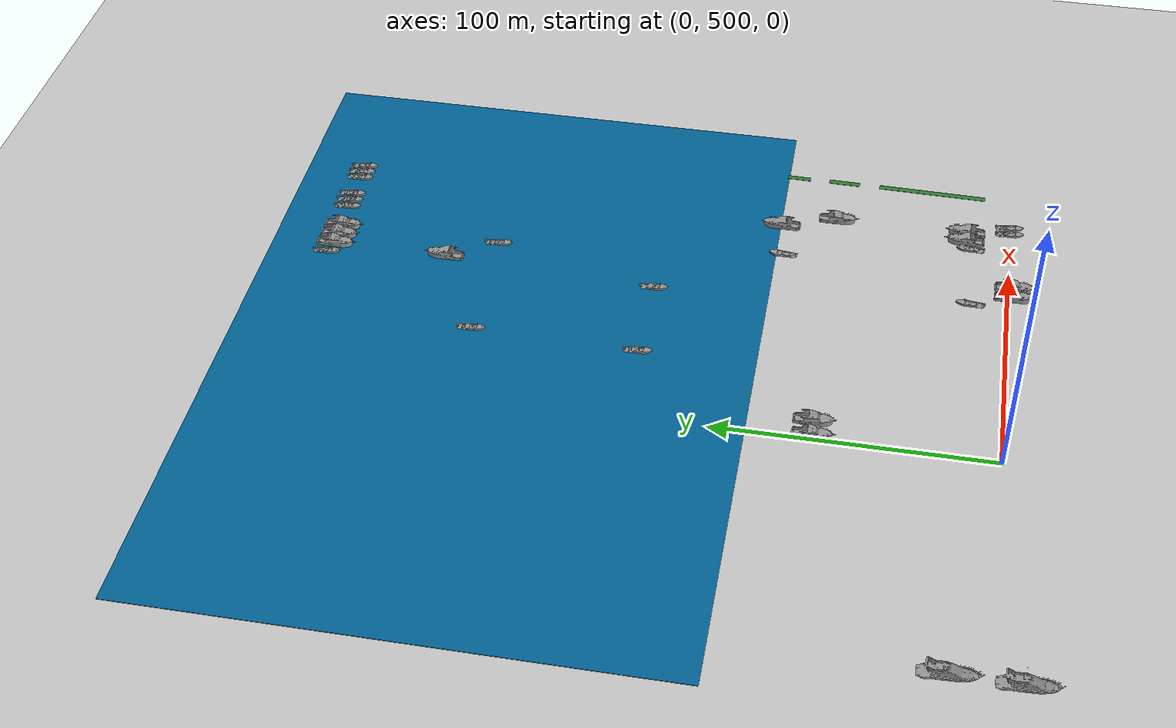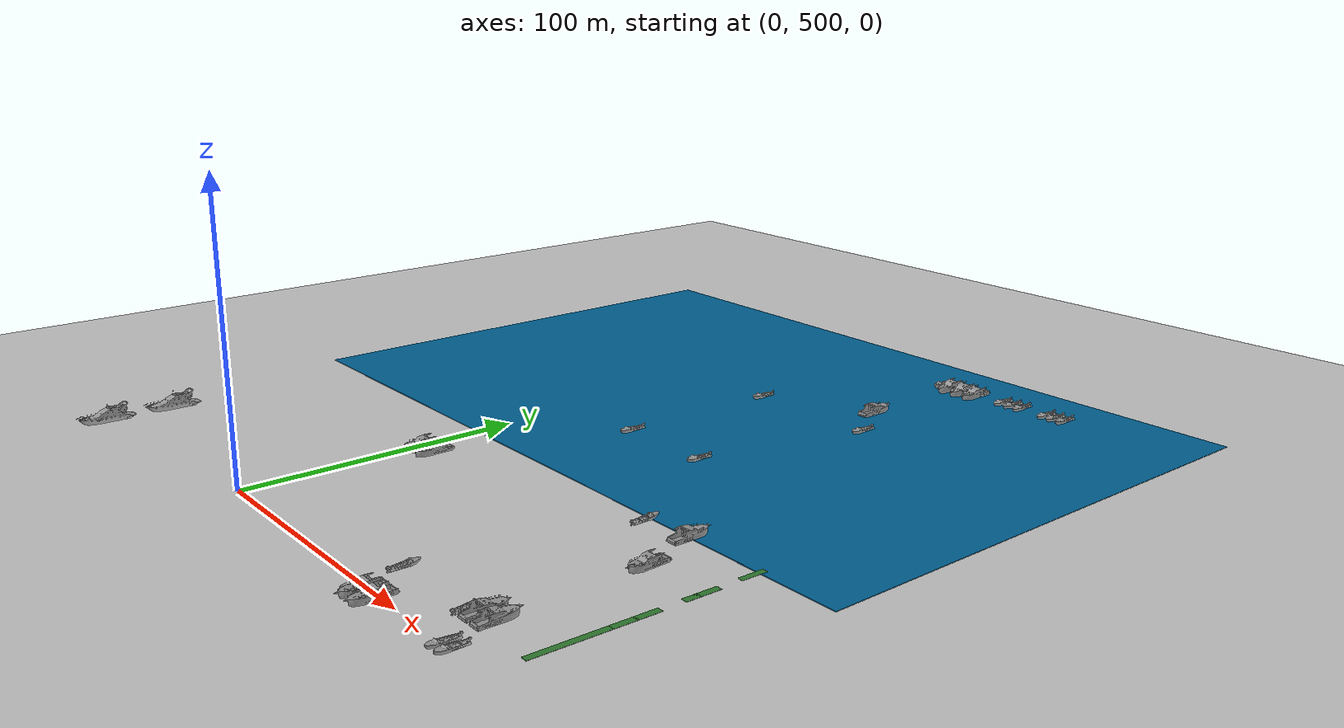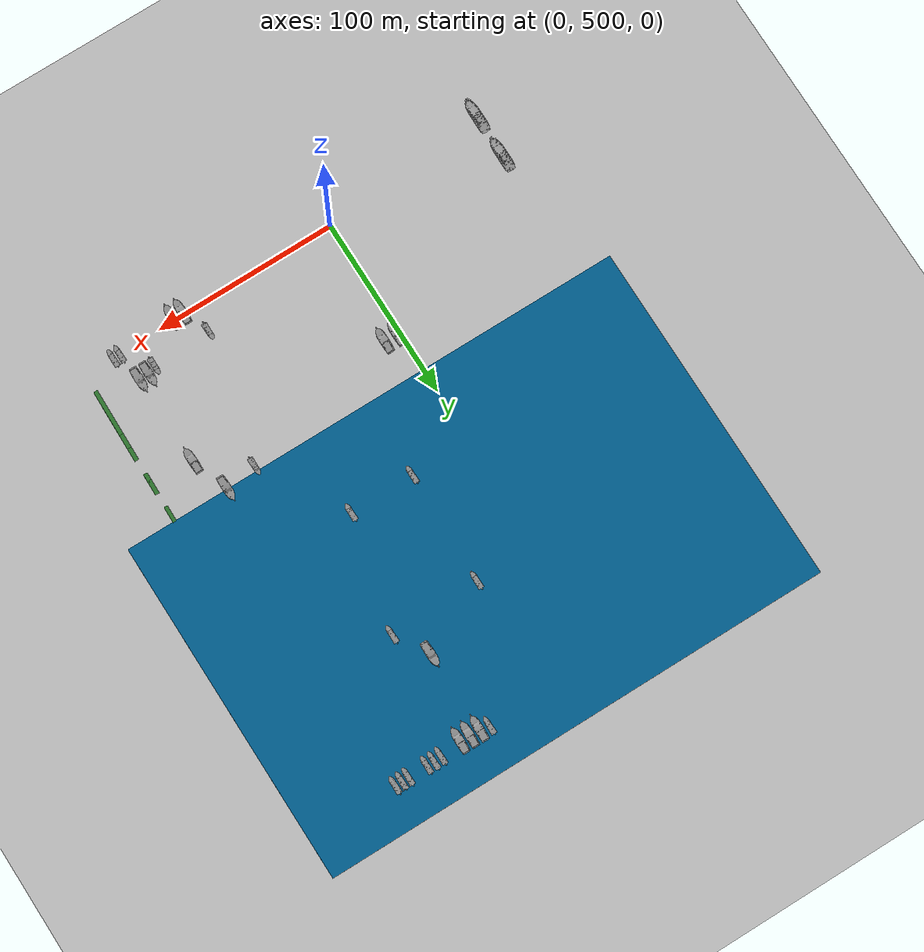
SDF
<sdf version="1.7">
 <world name="default">
  <model name="ground_plane">
   <static>1</static>
   <link name="link">
    <collision name="collision">
     <geometry><plane><normal>0 0 1</normal><size>100 100</size></plane></geometry>
     <surface><friction><ode><mu>100</mu><mu2>50</mu2></ode></friction></surface>
    </collision>
    <visual name="visual">
     <cast_shadows>0</cast_shadows>
     <geometry><plane><normal>0 0 1</normal><size>100 100</size></plane></geometry>
     <material>
      <script><uri>file://media/materials/scripts/gazebo.material</uri><name>Gazebo/Grey</name></script>
     </material>
    </visual>
   </link>
  </model>
  <model name="sailboat_1_1_clone_1">
   <static>1</static>
   <link name="link">
    <visual name="visual">
     <pose>0 0 1 0 0 -1.507</pose>
     <geometry>
      <mesh>
       <uri>/home/albert/marinero_ws/src/marinero_simulations/models/sailboat_1/meshes/Sailboat.stl</uri>
       <scale>1.8 1.8 1.8</scale>
      </mesh>
     </geometry>
     <material>
      <script><uri>file://media/materials/scripts/gazebo.material</uri><name>Gazebo/Grey</name></script>
     </material>
    </visual>
    <collision name="collision">
     <pose>0 0 1 0 0 -1.507</pose>
     <geometry>
      <mesh>
       <uri>/home/albert/marinero_ws/src/marinero_simulations/models/sailboat_1/meshes/Sailboat.stl</uri>
       <scale>1.8 1.8 1.8</scale>
      </mesh>
     </geometry>
    </collision>
   </link>
   <pose>77.9434 647.569 0 0 0 -0.077596</pose>
  </model>
  <model name="speedboat_clone_0">
   <static>1</static>
   <link name="link">
    <visual name="visual">
     <pose>0 0 0.2 0 -0 1.57</pose>
     <geometry>
      <mesh>
       <uri>/home/albert/marinero_ws/src/marinero_simulations/models/speedboat/meshes/Speedboat.stl</uri>
       <scale>2 2 2</scale>
      </mesh>
     </geometry>
     <material>
      <script><uri>file://media/materials/scripts/gazebo.material</uri><name>Gazebo/Grey</name></script>
     </material>
    </visual>
    <collision name="collision">
     <pose>0 0 0.2 0 -0 1.57</pose>
     <geometry>
      <mesh>
       <uri>/home/albert/marinero_ws/src/marinero_simulations/models/sailboat_1/meshes/Speedboat.stl</uri>
       <scale>2 2 2</scale>
      </mesh>
     </geometry>
    </collision>
   </link>
   <pose>111.55 515.295 0 0 -0 0</pose>
  </model>
  <model name="speedboat_clone_1">
   <static>1</static>
   <link name="link">
    <visual name="visual">
     <pose>0 0 0.2 0 -0 1.57</pose>
     <geometry>
      <mesh>
       <uri>/home/albert/marinero_ws/src/marinero_simulations/models/speedboat/meshes/Speedboat.stl</uri>
       <scale>2 2 2</scale>
      </mesh>
     </geometry>
     <material>
      <script><uri>file://media/materials/scripts/gazebo.material</uri><name>Gazebo/Grey</name></script>
     </material>
    </visual>
    <collision name="collision">
     <pose>0 0 0.2 0 -0 1.57</pose>
     <geometry>
      <mesh>
       <uri>/home/albert/marinero_ws/src/marinero_simulations/models/sailboat_1/meshes/Speedboat.stl</uri>
       <scale>2 2 2</scale>
      </mesh>
     </geometry>
    </collision>
   </link>
   <pose>79.701 514.282 0 0 -0 0</pose>
  </model>
  <model name="speedboat_clone_2">
   <static>1</static>
   <link name="link">
    <visual name="visual">
     <pose>0 0 0.2 0 -0 1.57</pose>
     <geometry>
      <mesh>
       <uri>/home/albert/marinero_ws/src/marinero_simulations/models/speedboat/meshes/Speedboat.stl</uri>
       <scale>2 2 2</scale>
      </mesh>
     </geometry>
     <material>
      <script><uri>file://media/materials/scripts/gazebo.material</uri><name>Gazebo/Grey</name></script>
     </material>
    </visual>
    <collision name="collision">
     <pose>0 0 0.2 0 -0 1.57</pose>
     <geometry>
      <mesh>
       <uri>/home/albert/marinero_ws/src/marinero_simulations/models/sailboat_1/meshes/Speedboat.stl</uri>
       <scale>2 2 2</scale>
      </mesh>
     </geometry>
    </collision>
   </link>
   <pose>96.2597 585.04 0 0 -0 0</pose>
  </model>
  <model name="speedboat_clone_3">
   <static>1</static>
   <link name="link">
    <visual name="visual">
     <pose>0 0 0.2 0 -0 1.57</pose>
     <geometry>
      <mesh>
       <uri>/home/albert/marinero_ws/src/marinero_simulations/models/speedboat/meshes/Speedboat.stl</uri>
       <scale>2 2 2</scale>
      </mesh>
     </geometry>
     <material>
      <script><uri>file://media/materials/scripts/gazebo.material</uri><name>Gazebo/Grey</name></script>
     </material>
    </visual>
    <collision name="collision">
     <pose>0 0 0.2 0 -0 1.57</pose>
     <geometry>
      <mesh>
       <uri>/home/albert/marinero_ws/src/marinero_simulations/models/sailboat_1/meshes/Speedboat.stl</uri>
       <scale>2 2 2</scale>
      </mesh>
     </geometry>
    </collision>
   </link>
   <pose>68.6056 628.792 0 0 0 -3.12882</pose>
  </model>
  <model name="speedboat_clone_3_clone">
   <static>1</static>
   <link name="link">
    <visual name="visual">
     <pose>0 0 0.2 0 -0 1.57</pose>
     <geometry>
      <mesh>
       <uri>/home/albert/marinero_ws/src/marinero_simulations/models/speedboat/meshes/Speedboat.stl</uri>
       <scale>2 2 2</scale>
      </mesh>
     </geometry>
     <material>
      <script><uri>file://media/materials/scripts/gazebo.material</uri><name>Gazebo/Grey</name></script>
     </material>
    </visual>
    <collision name="collision">
     <pose>0 0 0.2 0 -0 1.57</pose>
     <geometry>
      <mesh>
       <uri>/home/albert/marinero_ws/src/marinero_simulations/models/sailboat_1/meshes/Speedboat.stl</uri>
       <scale>2 2 2</scale>
      </mesh>
     </geometry>
    </collision>
   </link>
   <pose>33.1988 628.868 0 0 0 -3.12882</pose>
  </model>
  <model name="speedboat_clone_3_clone_0">
   <static>1</static>
   <link name="link">
    <visual name="visual">
     <pose>0 0 0.2 0 -0 1.57</pose>
     <geometry>
      <mesh>
       <uri>/home/albert/marinero_ws/src/marinero_simulations/models/speedboat/meshes/Speedboat.stl</uri>
       <scale>2 2 2</scale>
      </mesh>
     </geometry>
     <material>
      <script><uri>file://media/materials/scripts/gazebo.material</uri><name>Gazebo/Grey</name></script>
     </material>
    </visual>
    <collision name="collision">
     <pose>0 0 0.2 0 -0 1.57</pose>
     <geometry>
      <mesh>
       <uri>/home/albert/marinero_ws/src/marinero_simulations/models/sailboat_1/meshes/Speedboat.stl</uri>
       <scale>2 2 2</scale>
      </mesh>
     </geometry>
    </collision>
   </link>
   <pose>34.7119 690.235 0 0 0 -3.12882</pose>
  </model>
  <model name="speedboat_clone_3_clone_1">
   <static>1</static>
   <link name="link">
    <visual name="visual">
     <pose>0 0 0.2 0 -0 1.57</pose>
     <geometry>
      <mesh>
       <uri>/home/albert/marinero_ws/src/marinero_simulations/models/speedboat/meshes/Speedboat.stl</uri>
       <scale>2 2 2</scale>
      </mesh>
     </geometry>
     <material>
      <script><uri>file://media/materials/scripts/gazebo.material</uri><name>Gazebo/Grey</name></script>
     </material>
    </visual>
    <collision name="collision">
     <pose>0 0 0.2 0 -0 1.57</pose>
     <geometry>
      <mesh>
       <uri>/home/albert/marinero_ws/src/marinero_simulations/models/sailboat_1/meshes/Speedboat.stl</uri>
       <scale>2 2 2</scale>
      </mesh>
     </geometry>
    </collision>
   </link>
   <pose>83.8159 691.024 0 0 0 -3.12882</pose>
  </model>
  <model name="speedboat_clone_3_clone_2">
   <static>1</static>
   <link name="link">
    <visual name="visual">
     <pose>0 0 0.2 0 -0 1.57</pose>
     <geometry>
      <mesh>
       <uri>/home/albert/marinero_ws/src/marinero_simulations/models/speedboat/meshes/Speedboat.stl</uri>
       <scale>2 2 2</scale>
      </mesh>
     </geometry>
     <material>
      <script><uri>file://media/materials/scripts/gazebo.material</uri><name>Gazebo/Grey</name></script>
     </material>
    </visual>
    <collision name="collision">
     <pose>0 0 0.2 0 -0 1.57</pose>
     <geometry>
      <mesh>
       <uri>/home/albert/marinero_ws/src/marinero_simulations/models/sailboat_1/meshes/Speedboat.stl</uri>
       <scale>2 2 2</scale>
      </mesh>
     </geometry>
    </collision>
   </link>
   <pose>67.744 754.075 0 0 0 -3.12882</pose>
  </model>
  <model name="speedboat_clone_3_clone_3">
   <static>1</static>
   <link name="link">
    <visual name="visual">
     <pose>0 0 0.2 0 -0 1.57</pose>
     <geometry>
      <mesh>
       <uri>/home/albert/marinero_ws/src/marinero_simulations/models/speedboat/meshes/Speedboat.stl</uri>
       <scale>2 2 2</scale>
      </mesh>
     </geometry>
     <material>
      <script><uri>file://media/materials/scripts/gazebo.material</uri><name>Gazebo/Grey</name></script>
     </material>
    </visual>
    <collision name="collision">
     <pose>0 0 0.2 0 -0 1.57</pose>
     <geometry>
      <mesh>
       <uri>/home/albert/marinero_ws/src/marinero_simulations/models/sailboat_1/meshes/Speedboat.stl</uri>
       <scale>2 2 2</scale>
      </mesh>
     </geometry>
    </collision>
   </link>
   <pose>95.506 753.963 0 0 0 -3.12882</pose>
  </model>
  <model name="speedboat_clone_3_clone_4">
   <static>1</static>
   <link name="link">
    <visual name="visual">
     <pose>0 0 0.2 0 -0 1.57</pose>
     <geometry>
      <mesh>
       <uri>/home/albert/marinero_ws/src/marinero_simulations/models/speedboat/meshes/Speedboat.stl</uri>
       <scale>2 2 2</scale>
      </mesh>
     </geometry>
     <material>
      <script><uri>file://media/materials/scripts/gazebo.material</uri><name>Gazebo/Grey</name></script>
     </material>
    </visual>
    <collision name="collision">
     <pose>0 0 0.2 0 -0 1.57</pose>
     <geometry>
      <mesh>
       <uri>/home/albert/marinero_ws/src/marinero_simulations/models/sailboat_1/meshes/Speedboat.stl</uri>
       <scale>2 2 2</scale>
      </mesh>
     </geometry>
    </collision>
   </link>
   <pose>99.6253 754.109 0 0 0 -3.12882</pose>
  </model>
  <model name="speedboat_clone_3_clone_5">
   <static>1</static>
   <link name="link">
    <visual name="visual">
     <pose>0 0 0.2 0 -0 1.57</pose>
     <geometry>
      <mesh>
       <uri>/home/albert/marinero_ws/src/marinero_simulations/models/speedboat/meshes/Speedboat.stl</uri>
       <scale>2 2 2</scale>
      </mesh>
     </geometry>
     <material>
      <script><uri>file://media/materials/scripts/gazebo.material</uri><name>Gazebo/Grey</name></script>
     </material>
    </visual>
    <collision name="collision">
     <pose>0 0 0.2 0 -0 1.57</pose>
     <geometry>
      <mesh>
       <uri>/home/albert/marinero_ws/src/marinero_simulations/models/sailboat_1/meshes/Speedboat.stl</uri>
       <scale>2 2 2</scale>
      </mesh>
     </geometry>
    </collision>
   </link>
   <pose>103.64 754.106 0 0 0 -3.12882</pose>
  </model>
  <model name="speedboat_clone_3_clone_6">
   <static>1</static>
   <link name="link">
    <visual name="visual">
     <pose>0 0 0.2 0 -0 1.57</pose>
     <geometry>
      <mesh>
       <uri>/home/albert/marinero_ws/src/marinero_simulations/models/speedboat/meshes/Speedboat.stl</uri>
       <scale>2 2 2</scale>
      </mesh>
     </geometry>
     <material>
      <script><uri>file://media/materials/scripts/gazebo.material</uri><name>Gazebo/Grey</name></script>
     </material>
    </visual>
    <collision name="collision">
     <pose>0 0 0.2 0 -0 1.57</pose>
     <geometry>
      <mesh>
       <uri>/home/albert/marinero_ws/src/marinero_simulations/models/sailboat_1/meshes/Speedboat.stl</uri>
       <scale>2 2 2</scale>
      </mesh>
     </geometry>
    </collision>
   </link>
   <pose>114.212 754.124 0 0 0 -3.12882</pose>
  </model>
  <model name="speedboat_clone_3_clone_7">
   <static>1</static>
   <link name="link">
    <visual name="visual">
     <pose>0 0 0.2 0 -0 1.57</pose>
     <geometry>
      <mesh>
       <uri>/home/albert/marinero_ws/src/marinero_simulations/models/speedboat/meshes/Speedboat.stl</uri>
       <scale>2 2 2</scale>
      </mesh>
     </geometry>
     <material>
      <script><uri>file://media/materials/scripts/gazebo.material</uri><name>Gazebo/Grey</name></script>
     </material>
    </visual>
    <collision name="collision">
     <pose>0 0 0.2 0 -0 1.57</pose>
     <geometry>
      <mesh>
       <uri>/home/albert/marinero_ws/src/marinero_simulations/models/sailboat_1/meshes/Speedboat.stl</uri>
       <scale>2 2 2</scale>
      </mesh>
     </geometry>
    </collision>
   </link>
   <pose>117.959 754.183 0 0 0 -3.12882</pose>
  </model>
  <model name="speedboat_clone_3_clone_8">
   <static>1</static>
   <link name="link">
    <visual name="visual">
     <pose>0 0 0.2 0 -0 1.57</pose>
     <geometry>
      <mesh>
       <uri>/home/albert/marinero_ws/src/marinero_simulations/models/speedboat/meshes/Speedboat.stl</uri>
       <scale>2 2 2</scale>
      </mesh>
     </geometry>
     <material>
      <script><uri>file://media/materials/scripts/gazebo.material</uri><name>Gazebo/Grey</name></script>
     </material>
    </visual>
    <collision name="collision">
     <pose>0 0 0.2 0 -0 1.57</pose>
     <geometry>
      <mesh>
       <uri>/home/albert/marinero_ws/src/marinero_simulations/models/sailboat_1/meshes/Speedboat.stl</uri>
       <scale>2 2 2</scale>
      </mesh>
     </geometry>
    </collision>
   </link>
   <pose>121.721 754.24 0 0 0 -3.12882</pose>
  </model>
  <model name="yacht_2">
   <static>1</static>
   <link name="link">
    <visual name="visual">
     <geometry>
      <mesh>
       <uri>/home/albert/marinero_ws/src/marinero_simulations/models/yacht_2/meshes/Yatch_2.stl</uri>
       <scale>5 5 5</scale>
      </mesh>
     </geometry>
     <material>
      <script><uri>file://media/materials/scripts/gazebo.material</uri><name>Gazebo/Grey</name></script>
     </material>
    </visual>
    <collision name="collision">
     <geometry>
      <mesh>
       <uri>/home/albert/marinero_ws/src/marinero_simulations/models/yacht_2/meshes/Yatch_2.stl</uri>
       <scale>5 5 5</scale>
      </mesh>
     </geometry>
    </collision>
   </link>
   <pose>73.0562 710.666 0 0 -0 0</pose>
  </model>
  <model name="yacht_2_clone">
   <static>1</static>
   <link name="link">
    <visual name="visual">
     <geometry>
      <mesh>
       <uri>/home/albert/marinero_ws/src/marinero_simulations/models/yacht_2/meshes/Yatch_2.stl</uri>
       <scale>5 5 5</scale>
      </mesh>
     </geometry>
     <material>
      <script><uri>file://media/materials/scripts/gazebo.material</uri><name>Gazebo/Grey</name></script>
     </material>
    </visual>
    <collision name="collision">
     <geometry>
      <mesh>
       <uri>/home/albert/marinero_ws/src/marinero_simulations/models/yacht_2/meshes/Yatch_2.stl</uri>
       <scale>5 5 5</scale>
      </mesh>
     </geometry>
    </collision>
   </link>
   <pose>72.8831 752.174 0 0 -0 3.14083</pose>
  </model>
  <model name="yacht_2_clone_clone">
   <static>1</static>
   <link name="link">
    <visual name="visual">
     <geometry>
      <mesh>
       <uri>/home/albert/marinero_ws/src/marinero_simulations/models/yacht_2/meshes/Yatch_2.stl</uri>
       <scale>5 5 5</scale>
      </mesh>
     </geometry>
     <material>
      <script><uri>file://media/materials/scripts/gazebo.material</uri><name>Gazebo/Grey</name></script>
     </material>
    </visual>
    <collision name="collision">
     <geometry>
      <mesh>
       <uri>/home/albert/marinero_ws/src/marinero_simulations/models/yacht_2/meshes/Yatch_2.stl</uri>
       <scale>5 5 5</scale>
      </mesh>
     </geometry>
    </collision>
   </link>
   <pose>78.3912 752.156 0 0 -0 3.14083</pose>
  </model>
  <model name="yacht_2_clone_clone_0">
   <static>1</static>
   <link name="link">
    <visual name="visual">
     <geometry>
      <mesh>
       <uri>/home/albert/marinero_ws/src/marinero_simulations/models/yacht_2/meshes/Yatch_2.stl</uri>
       <scale>5 5 5</scale>
      </mesh>
     </geometry>
     <material>
      <script><uri>file://media/materials/scripts/gazebo.material</uri><name>Gazebo/Grey</name></script>
     </material>
    </visual>
    <collision name="collision">
     <geometry>
      <mesh>
       <uri>/home/albert/marinero_ws/src/marinero_simulations/models/yacht_2/meshes/Yatch_2.stl</uri>
       <scale>5 5 5</scale>
      </mesh>
     </geometry>
    </collision>
   </link>
   <pose>83.8824 752.219 0 0 -0 3.14083</pose>
  </model>
  <model name="sailboat_1_1_clone_1_clone">
   <static>1</static>
   <link name="link">
    <visual name="visual">
     <pose>0 0 1 0 0 -1.507</pose>
     <geometry>
      <mesh>
       <uri>/home/albert/marinero_ws/src/marinero_simulations/models/sailboat_1/meshes/Sailboat.stl</uri>
       <scale>1.8 1.8 1.8</scale>
      </mesh>
     </geometry>
     <material>
      <script><uri>file://media/materials/scripts/gazebo.material</uri><name>Gazebo/Grey</name></script>
     </material>
    </visual>
    <collision name="collision">
     <pose>0 0 1 0 0 -1.507</pose>
     <geometry>
      <mesh>
       <uri>/home/albert/marinero_ws/src/marinero_simulations/models/sailboat_1/meshes/Sailboat.stl</uri>
       <scale>1.8 1.8 1.8</scale>
      </mesh>
     </geometry>
    </collision>
   </link>
   <pose>128.904 647.228 0 0 0 -0.077596</pose>
  </model>
  <model name="sailboat_1_1_clone_1_clone_0">
   <static>1</static>
   <link name="link">
    <visual name="visual">
     <pose>0 0 1 0 0 -1.507</pose>
     <geometry>
      <mesh>
       <uri>/home/albert/marinero_ws/src/marinero_simulations/models/sailboat_1/meshes/Sailboat.stl</uri>
       <scale>1.8 1.8 1.8</scale>
      </mesh>
     </geometry>
     <material>
      <script><uri>file://media/materials/scripts/gazebo.material</uri><name>Gazebo/Grey</name></script>
     </material>
    </visual>
    <collision name="collision">
     <pose>0 0 1 0 0 -1.507</pose>
     <geometry>
      <mesh>
       <uri>/home/albert/marinero_ws/src/marinero_simulations/models/sailboat_1/meshes/Sailboat.stl</uri>
       <scale>1.8 1.8 1.8</scale>
      </mesh>
     </geometry>
    </collision>
   </link>
   <pose>121.633 647.09 0 0 0 -0.077596</pose>
  </model>
  <model name="yacht_2_0_clone_0">
   <static>1</static>
   <link name="link">
    <visual name="visual">
     <geometry>
      <mesh>
       <uri>/home/albert/marinero_ws/src/marinero_simulations/models/yacht_2/meshes/Yatch_2.stl</uri>
       <scale>5 5 5</scale>
      </mesh>
     </geometry>
     <material>
      <script><uri>file://media/materials/scripts/gazebo.material</uri><name>Gazebo/Grey</name></script>
     </material>
    </visual>
    <collision name="collision">
     <geometry>
      <mesh>
       <uri>/home/albert/marinero_ws/src/marinero_simulations/models/yacht_2/meshes/Yatch_2.stl</uri>
       <scale>5 5 5</scale>
      </mesh>
     </geometry>
    </collision>
   </link>
   <pose>91.1696 497.22 0 0 0 -3.13313</pose>
  </model>
  <model name="yacht_2_0_clone_0_clone">
   <static>1</static>
   <link name="link">
    <visual name="visual">
     <geometry>
      <mesh>
       <uri>/home/albert/marinero_ws/src/marinero_simulations/models/yacht_2/meshes/Yatch_2.stl</uri>
       <scale>5 5 5</scale>
      </mesh>
     </geometry>
     <material>
      <script><uri>file://media/materials/scripts/gazebo.material</uri><name>Gazebo/Grey</name></script>
     </material>
    </visual>
    <collision name="collision">
     <geometry>
      <mesh>
       <uri>/home/albert/marinero_ws/src/marinero_simulations/models/yacht_2/meshes/Yatch_2.stl</uri>
       <scale>5 5 5</scale>
      </mesh>
     </geometry>
    </collision>
   </link>
   <pose>85.7469 497.294 0 0 0 -3.13231</pose>
  </model>
  <model name="yacht_2_0_clone_0_clone_0">
   <static>1</static>
   <link name="link">
    <visual name="visual">
     <geometry>
      <mesh>
       <uri>/home/albert/marinero_ws/src/marinero_simulations/models/yacht_2/meshes/Yatch_2.stl</uri>
       <scale>5 5 5</scale>
      </mesh>
     </geometry>
     <material>
      <script><uri>file://media/materials/scripts/gazebo.material</uri><name>Gazebo/Grey</name></script>
     </material>
    </visual>
    <collision name="collision">
     <geometry>
      <mesh>
       <uri>/home/albert/marinero_ws/src/marinero_simulations/models/yacht_2/meshes/Yatch_2.stl</uri>
       <scale>5 5 5</scale>
      </mesh>
     </geometry>
    </collision>
   </link>
   <pose>120.702 565.081 0 0 0 -3.11366</pose>
  </model>
  <model name="yacht_2_0_clone_clone">
   <static>1</static>
   <link name="link">
    <visual name="visual">
     <geometry>
      <mesh>
       <uri>/home/albert/marinero_ws/src/marinero_simulations/models/yacht_2/meshes/Yatch_2.stl</uri>
       <scale>5 5 5</scale>
      </mesh>
     </geometry>
     <material>
      <script><uri>file://media/materials/scripts/gazebo.material</uri><name>Gazebo/Grey</name></script>
     </material>
    </visual>
    <collision name="collision">
     <geometry>
      <mesh>
       <uri>/home/albert/marinero_ws/src/marinero_simulations/models/yacht_2/meshes/Yatch_2.stl</uri>
       <scale>5 5 5</scale>
      </mesh>
     </geometry>
    </collision>
   </link>
   <pose>116.017 517.499 0 0 -0 0</pose>
  </model>
  <model name="yacht_2_0_clone_clone_0">
   <static>1</static>
   <link name="link">
    <visual name="visual">
     <geometry>
      <mesh>
       <uri>/home/albert/marinero_ws/src/marinero_simulations/models/yacht_2/meshes/Yatch_2.stl</uri>
       <scale>5 5 5</scale>
      </mesh>
     </geometry>
     <material>
      <script><uri>file://media/materials/scripts/gazebo.material</uri><name>Gazebo/Grey</name></script>
     </material>
    </visual>
    <collision name="collision">
     <geometry>
      <mesh>
       <uri>/home/albert/marinero_ws/src/marinero_simulations/models/yacht_2/meshes/Yatch_2.stl</uri>
       <scale>5 5 5</scale>
      </mesh>
     </geometry>
    </collision>
   </link>
   <pose>121.41 517.501 0 0 -0 0</pose>
  </model>
  <model name="sailboat_1_clone_1_clone_clone_0_clone_clone">
   <static>1</static>
   <link name="link">
    <visual name="visual">
     <pose>0 0 1 0 0 -1.507</pose>
     <geometry>
      <mesh>
       <uri>/home/albert/marinero_ws/src/marinero_simulations/models/sailboat_1/meshes/Sailboat.stl</uri>
       <scale>1.8 1.8 1.8</scale>
      </mesh>
     </geometry>
     <material>
      <script><uri>file://media/materials/scripts/gazebo.material</uri><name>Gazebo/Grey</name></script>
     </material>
    </visual>
    <collision name="collision">
     <pose>0 0 1 0 0 -1.507</pose>
     <geometry>
      <mesh>
       <uri>/home/albert/marinero_ws/src/marinero_simulations/models/sailboat_1/meshes/Sailboat.stl</uri>
       <scale>1.8 1.8 1.8</scale>
      </mesh>
     </geometry>
    </collision>
   </link>
   <pose>-91.8031 559.293 0 0 -0 3.06385</pose>
  </model>
  <model name="sailboat_1_1_clone_clone">
   <static>1</static>
   <link name="link">
    <visual name="visual">
     <pose>0 0 1 0 0 -1.507</pose>
     <geometry>
      <mesh>
       <uri>/home/albert/marinero_ws/src/marinero_simulations/models/sailboat_1/meshes/Sailboat.stl</uri>
       <scale>1.8 1.8 1.8</scale>
      </mesh>
     </geometry>
     <material>
      <script><uri>file://media/materials/scripts/gazebo.material</uri><name>Gazebo/Grey</name></script>
     </material>
    </visual>
    <collision name="collision">
     <pose>0 0 1 0 0 -1.507</pose>
     <geometry>
      <mesh>
       <uri>/home/albert/marinero_ws/src/marinero_simulations/models/sailboat_1/meshes/Sailboat.stl</uri>
       <scale>1.8 1.8 1.8</scale>
      </mesh>
     </geometry>
    </collision>
   </link>
   <pose>26.4036 515.202 0 0 0 -0.077596</pose>
  </model>
  <model name="speedboat_clone_3_clone_6_clone">
   <static>1</static>
   <link name="link">
    <visual name="visual">
     <pose>0 0 0.2 0 -0 1.57</pose>
     <geometry>
      <mesh>
       <uri>/home/albert/marinero_ws/src/marinero_simulations/models/speedboat/meshes/Speedboat.stl</uri>
       <scale>2 2 2</scale>
      </mesh>
     </geometry>
     <material>
      <script><uri>file://media/materials/scripts/gazebo.material</uri><name>Gazebo/Grey</name></script>
     </material>
    </visual>
    <collision name="collision">
     <pose>0 0 0.2 0 -0 1.57</pose>
     <geometry>
      <mesh>
       <uri>/home/albert/marinero_ws/src/marinero_simulations/models/sailboat_1/meshes/Speedboat.stl</uri>
       <scale>2 2 2</scale>
      </mesh>
     </geometry>
    </collision>
   </link>
   <pose>126.875 499.892 0 0 0 -3.12882</pose>
  </model>
  <model name="speedboat_clone_3_clone_6_clone_0">
   <static>1</static>
   <link name="link">
    <visual name="visual">
     <pose>0 0 0.2 0 -0 1.57</pose>
     <geometry>
      <mesh>
       <uri>/home/albert/marinero_ws/src/marinero_simulations/models/speedboat/meshes/Speedboat.stl</uri>
       <scale>2 2 2</scale>
      </mesh>
     </geometry>
     <material>
      <script><uri>file://media/materials/scripts/gazebo.material</uri><name>Gazebo/Grey</name></script>
     </material>
    </visual>
    <collision name="collision">
     <pose>0 0 0.2 0 -0 1.57</pose>
     <geometry>
      <mesh>
       <uri>/home/albert/marinero_ws/src/marinero_simulations/models/sailboat_1/meshes/Speedboat.stl</uri>
       <scale>2 2 2</scale>
      </mesh>
     </geometry>
    </collision>
   </link>
   <pose>123.072 499.787 0 0 0 -3.12882</pose>
  </model>
  <model name="sailboat_1_1_clone_0_clone">
   <static>1</static>
   <link name="link">
    <visual name="visual">
     <pose>0 0 1 0 0 -1.507</pose>
     <geometry>
      <mesh>
       <uri>/home/albert/marinero_ws/src/marinero_simulations/models/sailboat_1/meshes/Sailboat.stl</uri>
       <scale>1.8 1.8 1.8</scale>
      </mesh>
     </geometry>
     <material>
      <script><uri>file://media/materials/scripts/gazebo.material</uri><name>Gazebo/Grey</name></script>
     </material>
    </visual>
    <collision name="collision">
     <pose>0 0 1 0 0 -1.507</pose>
     <geometry>
      <mesh>
       <uri>/home/albert/marinero_ws/src/marinero_simulations/models/sailboat_1/meshes/Sailboat.stl</uri>
       <scale>1.8 1.8 1.8</scale>
      </mesh>
     </geometry>
    </collision>
   </link>
   <pose>16.6274 564.94 0 0 -0 3.08007</pose>
  </model>
  <model name="sailboat_1_1_clone_0_clone_clone">
   <static>1</static>
   <link name="link">
    <visual name="visual">
     <pose>0 0 1 0 0 -1.507</pose>
     <geometry>
      <mesh>
       <uri>/home/albert/marinero_ws/src/marinero_simulations/models/sailboat_1/meshes/Sailboat.stl</uri>
       <scale>1.8 1.8 1.8</scale>
      </mesh>
     </geometry>
     <material>
      <script><uri>file://media/materials/scripts/gazebo.material</uri><name>Gazebo/Grey</name></script>
     </material>
    </visual>
    <collision name="collision">
     <pose>0 0 1 0 0 -1.507</pose>
     <geometry>
      <mesh>
       <uri>/home/albert/marinero_ws/src/marinero_simulations/models/sailboat_1/meshes/Sailboat.stl</uri>
       <scale>1.8 1.8 1.8</scale>
      </mesh>
     </geometry>
    </collision>
   </link>
   <pose>107.575 565.37 0 0 -0 3.08007</pose>
  </model>
  <model name="sailboat_1_1_clone_0_clone_clone_0">
   <static>1</static>
   <link name="link">
    <visual name="visual">
     <pose>0 0 1 0 0 -1.507</pose>
     <geometry>
      <mesh>
       <uri>/home/albert/marinero_ws/src/marinero_simulations/models/sailboat_1/meshes/Sailboat.stl</uri>
       <scale>1.8 1.8 1.8</scale>
      </mesh>
     </geometry>
     <material>
      <script><uri>file://media/materials/scripts/gazebo.material</uri><name>Gazebo/Grey</name></script>
     </material>
    </visual>
    <collision name="collision">
     <pose>0 0 1 0 0 -1.507</pose>
     <geometry>
      <mesh>
       <uri>/home/albert/marinero_ws/src/marinero_simulations/models/sailboat_1/meshes/Sailboat.stl</uri>
       <scale>1.8 1.8 1.8</scale>
      </mesh>
     </geometry>
    </collision>
   </link>
   <pose>100.194 565.074 0 0 -0 3.08007</pose>
  </model>
  <model name="yacht_2_clone_clone_1">
   <static>1</static>
   <link name="link">
    <visual name="visual">
     <geometry>
      <mesh>
       <uri>/home/albert/marinero_ws/src/marinero_simulations/models/yacht_2/meshes/Yatch_2.stl</uri>
       <scale>5 5 5</scale>
      </mesh>
     </geometry>
     <material>
      <script><uri>file://media/materials/scripts/gazebo.material</uri><name>Gazebo/Grey</name></script>
     </material>
    </visual>
    <collision name="collision">
     <geometry>
      <mesh>
       <uri>/home/albert/marinero_ws/src/marinero_simulations/models/yacht_2/meshes/Yatch_2.stl</uri>
       <scale>5 5 5</scale>
      </mesh>
     </geometry>
    </collision>
   </link>
   <pose>8.79411 563.513 0 0 -0 3.14083</pose>
  </model>
  <model name="yacht_2_clone_clone_2">
   <static>1</static>
   <link name="link">
    <visual name="visual">
     <geometry>
      <mesh>
       <uri>/home/albert/marinero_ws/src/marinero_simulations/models/yacht_2/meshes/Yatch_2.stl</uri>
       <scale>5 5 5</scale>
      </mesh>
     </geometry>
     <material>
      <script><uri>file://media/materials/scripts/gazebo.material</uri><name>Gazebo/Grey</name></script>
     </material>
    </visual>
    <collision name="collision">
     <geometry>
      <mesh>
       <uri>/home/albert/marinero_ws/src/marinero_simulations/models/yacht_2/meshes/Yatch_2.stl</uri>
       <scale>5 5 5</scale>
      </mesh>
     </geometry>
    </collision>
   </link>
   <pose>1.78724 563.388 0 0 -0 3.14083</pose>
  </model>
  <model name="yacht_1_clone">
   <static>1</static>
   <link name="link">
    <visual name="visual">
     <pose>0 0 0.35 0 -0 0</pose>
     <geometry>
      <mesh>
       <uri>/home/albert/marinero_ws/src/marinero_simulations/models/yacht_1/meshes/Yacht_1.stl</uri>
       <scale>2.2 2.2 2.2</scale>
      </mesh>
     </geometry>
     <material>
      <script><uri>file://media/materials/scripts/gazebo.material</uri><name>Gazebo/Grey</name></script>
     </material>
    </visual>
    <collision name="collision">
     <pose>0 0 0.35 0 -0 0</pose>
     <geometry>
      <mesh>
       <uri>/home/albert/marinero_ws/src/marinero_simulations/models/yacht_1/meshes/Yacht_1.stl</uri>
       <scale>2.2 2.2 2.2</scale>
      </mesh>
     </geometry>
    </collision>
   </link>
   <pose>-92.2696 514.663 0 0 -0 0</pose>
  </model>
  <model name="yacht_1_clone_0">
   <static>1</static>
   <link name="link">
    <visual name="visual">
     <pose>0 0 0.35 0 -0 0</pose>
     <geometry>
      <mesh>
       <uri>/home/albert/marinero_ws/src/marinero_simulations/models/yacht_1/meshes/Yacht_1.stl</uri>
       <scale>2.2 2.2 2.2</scale>
      </mesh>
     </geometry>
     <material>
      <script><uri>file://media/materials/scripts/gazebo.material</uri><name>Gazebo/Grey</name></script>
     </material>
    </visual>
    <collision name="collision">
     <pose>0 0 0.35 0 -0 0</pose>
     <geometry>
      <mesh>
       <uri>/home/albert/marinero_ws/src/marinero_simulations/models/yacht_1/meshes/Yacht_1.stl</uri>
       <scale>2.2 2.2 2.2</scale>
      </mesh>
     </geometry>
    </collision>
   </link>
   <pose>-92.4578 490.88 0 0 -0 0</pose>
  </model>
  <model name="grass_plane_XS_0">
   <link name="link">
    <pose>0 0 1.255 0 0 -1.5905</pose>
    <inertial>
     <mass>1</mass>
     <inertia><ixx>1</ixx><ixy>0</ixy><ixz>0</ixz><iyy>1</iyy><iyz>0</iyz><izz>1</izz></inertia>
    </inertial>
    <visual name="visual">
     <cast_shadows>0</cast_shadows>
     <geometry><box><size>9 2 0.1</size></box></geometry>
     <material>
      <script>
       <uri>/home/albert/marinero_ws/src/marinero_simulations/models/grass_plane_XS/materials/scripts</uri>
       <uri>/home/albert/marinero_ws/src/marinero_simulations/models/grass_plane_XS/materials/textures/grass.jpg</uri>
       <name>grass_V1/texture</name>
      </script>
      <shader type="pixel"><normal_map>__default__</normal_map></shader>
      <ambient>0.2 0.5 0.2 1</ambient>
      <diffuse>0.2 0.5 0.2 1</diffuse>
      <specular>0.2 0.2 0.2 1</specular>
      <emissive>0 0 0 1</emissive>
     </material>
    </visual>
    <collision name="collision">
     <geometry><box><size>9 2 0.1</size></box></geometry>
     <surface>
      <friction>
       <ode><mu>1</mu><mu2>1</mu2><fdir1>0 0 0</fdir1><slip1>0.001</slip1><slip2>1e-05</slip2></ode>
       <torsional>
        <coefficient>1</coefficient>
        <patch_radius>0</patch_radius>
        <surface_radius>0</surface_radius>
        <use_patch_radius>1</use_patch_radius>
        <ode><slip>0</slip></ode>
       </torsional>
      </friction>
      <bounce><restitution_coefficient>0</restitution_coefficient><threshold>1e+06</threshold></bounce>
      <contact>
       <collide_without_contact>0</collide_without_contact>
       <collide_without_contact_bitmask>1</collide_without_contact_bitmask>
       <collide_bitmask>1</collide_bitmask>
       <ode>
        <soft_cfm>0</soft_cfm>
        <soft_erp>0.2</soft_erp>
        <kp>1e+13</kp>
        <kd>1</kd>
        <max_vel>0.01</max_vel>
        <min_depth>0</min_depth>
       </ode>
       <bullet>
        <split_impulse>1</split_impulse>
        <split_impulse_penetration_threshold>-0.01</split_impulse_penetration_threshold>
        <soft_cfm>0</soft_cfm>
        <soft_erp>0.2</soft_erp>
        <kp>1e+13</kp>
        <kd>1</kd>
       </bullet>
      </contact>
     </surface>
    </collision>
   </link>
   <static>1</static>
   <pose>143.796 583.12 0 0 -0 0</pose>
  </model>
  <model name="grass_plane_M">
   <link name="link">
    <pose>0 0 1.255 0 0 -1.5905</pose>
    <inertial>
     <mass>1</mass>
     <inertia><ixx>1</ixx><ixy>0</ixy><ixz>0</ixz><iyy>1</iyy><iyz>0</iyz><izz>1</izz></inertia>
    </inertial>
    <visual name="visual">
     <cast_shadows>0</cast_shadows>
     <geometry><box><size>25.75 2.25 0.1</size></box></geometry>
     <material>
      <script>
       <uri>/home/albert/marinero_ws/src/marinero_simulations/models/grass_plane_M/materials/scripts</uri>
       <uri>/home/albert/marinero_ws/src/marinero_simulations/models/grass_plane_M/materials/textures/grass.jpg</uri>
       <name>grass_M/texture</name>
      </script>
      <shader type="pixel"><normal_map>__default__</normal_map></shader>
      <ambient>0.2 0.5 0.2 1</ambient>
      <diffuse>0.2 0.5 0.2 1</diffuse>
      <specular>0.2 0.2 0.2 1</specular>
      <emissive>0 0 0 1</emissive>
     </material>
    </visual>
    <collision name="collision">
     <geometry><box><size>25.75 2.25 0.1</size></box></geometry>
     <surface>
      <friction>
       <ode><mu>1</mu><mu2>1</mu2><fdir1>0 0 0</fdir1><slip1>0.001</slip1><slip2>1e-05</slip2></ode>
       <torsional>
        <coefficient>1</coefficient>
        <patch_radius>0</patch_radius>
        <surface_radius>0</surface_radius>
        <use_patch_radius>1</use_patch_radius>
        <ode><slip>0</slip></ode>
       </torsional>
      </friction>
      <bounce><restitution_coefficient>0</restitution_coefficient><threshold>1e+06</threshold></bounce>
      <contact>
       <collide_without_contact>0</collide_without_contact>
       <collide_without_contact_bitmask>1</collide_without_contact_bitmask>
       <collide_bitmask>1</collide_bitmask>
       <ode>
        <soft_cfm>0</soft_cfm>
        <soft_erp>0.2</soft_erp>
        <kp>1e+13</kp>
        <kd>1</kd>
        <max_vel>0.01</max_vel>
        <min_depth>0</min_depth>
       </ode>
       <bullet>
        <split_impulse>1</split_impulse>
        <split_impulse_penetration_threshold>-0.01</split_impulse_penetration_threshold>
        <soft_cfm>0</soft_cfm>
        <soft_erp>0.2</soft_erp>
        <kp>1e+13</kp>
        <kd>1</kd>
       </bullet>
      </contact>
     </surface>
    </collision>
   </link>
   <static>1</static>
   <pose>143.149 523.226 0 0 -0 0</pose>
  </model>
  <model name="yacht_2_0_clone_clone_clone">
   <static>1</static>
   <link name="link">
    <visual name="visual">
     <geometry>
      <mesh>
       <uri>/home/albert/marinero_ws/src/marinero_simulations/models/yacht_2/meshes/Yatch_2.stl</uri>
       <scale>5 5 5</scale>
      </mesh>
     </geometry>
     <material>
      <script><uri>file://media/materials/scripts/gazebo.material</uri><name>Gazebo/Grey</name></script>
     </material>
    </visual>
    <collision name="collision">
     <geometry>
      <mesh>
       <uri>/home/albert/marinero_ws/src/marinero_simulations/models/yacht_2/meshes/Yatch_2.stl</uri>
       <scale>5 5 5</scale>
      </mesh>
     </geometry>
    </collision>
   </link>
   <pose>113.639 587.46 0 0 -0 0</pose>
  </model>
  <model name="sea_plane_C">
   <link name="link">
    <inertial>
     <mass>5.27875e+06</mass>
     <inertia>
      <ixx>4.66688e+09</ixx>
      <ixy>0</ixy>
      <ixz>0</ixz>
      <iyy>1.84866e+10</iyy>
      <iyz>0</iyz>
      <izz>2.31535e+10</izz>
     </inertia>
    </inertial>
    <visual name="visual">
     <cast_shadows>0</cast_shadows>
     <geometry><box><size>280 190 0.25</size></box></geometry>
     <material>
      <script>
       <uri>model://sea_plane/materials/scripts</uri>
       <uri>model://sea_plane/materials/textures</uri>
       <name>vrc/sea</name>
      </script>
      <shader type="pixel"><normal_map>__default__</normal_map></shader>
      <ambient>0 0.4 0.6 0</ambient>
      <diffuse>0 0.4 0.6 1</diffuse>
      <specular>0.2 0.2 0.2 1</specular>
      <emissive>0 0 0 1</emissive>
     </material>
    </visual>
    <collision name="collision">
     <geometry><box><size>280 190 0.25</size></box></geometry>
     <surface>
      <friction>
       <ode><mu>1</mu><mu2>1</mu2><fdir1>0 0 0</fdir1><slip1>0</slip1><slip2>0</slip2></ode>
       <torsional>
        <coefficient>1</coefficient>
        <patch_radius>0</patch_radius>
        <surface_radius>0</surface_radius>
        <use_patch_radius>1</use_patch_radius>
        <ode><slip>0</slip></ode>
       </torsional>
      </friction>
      <bounce><restitution_coefficient>0</restitution_coefficient><threshold>1e+06</threshold></bounce>
      <contact>
       <collide_without_contact>0</collide_without_contact>
       <collide_without_contact_bitmask>1</collide_without_contact_bitmask>
       <collide_bitmask>1</collide_bitmask>
       <ode>
        <soft_cfm>0</soft_cfm>
        <soft_erp>0.2</soft_erp>
        <kp>1e+13</kp>
        <kd>1</kd>
        <max_vel>0.01</max_vel>
        <min_depth>0</min_depth>
       </ode>
       <bullet>
        <split_impulse>1</split_impulse>
        <split_impulse_penetration_threshold>-0.01</split_impulse_penetration_threshold>
        <soft_cfm>0</soft_cfm>
        <soft_erp>0.2</soft_erp>
        <kp>1e+13</kp>
        <kd>1</kd>
       </bullet>
      </contact>
     </surface>
    </collision>
   </link>
   <static>1</static>
   <pose>30.4891 681.988 0 0 -0 0</pose>
  </model>
  <model name="grass_plane_SM_0_clone">
   <link name="link">
    <pose>0 0 1.255 0 0 -1.5905</pose>
    <inertial>
     <mass>1</mass>
     <inertia><ixx>1</ixx><ixy>0</ixy><ixz>0</ixz><iyy>1</iyy><iyz>0</iyz><izz>1</izz></inertia>
    </inertial>
    <visual name="visual">
     <cast_shadows>0</cast_shadows>
     <geometry><box><size>8 2.25 0.1</size></box></geometry>
     <material>
      <script>
       <uri>/home/albert/marinero_ws/src/marinero_simulations/models/grass_plane_SM/materials/scripts</uri>
       <uri>/home/albert/marinero_ws/src/marinero_simulations/models/grass_plane_SM/materials/textures/grass.jpg</uri>
       <name>grass_SM/texture</name>
      </script>
      <shader type="pixel"><normal_map>__default__</normal_map></shader>
      <ambient>0.2 0.5 0.2 1</ambient>
      <diffuse>0.2 0.5 0.2 1</diffuse>
      <specular>0.2 0.2 0.2 1</specular>
      <emissive>0 0 0 1</emissive>
     </material>
    </visual>
    <collision name="collision">
     <geometry><box><size>8 2.25 0.1</size></box></geometry>
     <surface>
      <friction>
       <ode><mu>1</mu><mu2>1</mu2><fdir1>0 0 0</fdir1><slip1>0.001</slip1><slip2>1e-05</slip2></ode>
       <torsional>
        <coefficient>1</coefficient>
        <patch_radius>0</patch_radius>
        <surface_radius>0</surface_radius>
        <use_patch_radius>1</use_patch_radius>
        <ode><slip>0</slip></ode>
       </torsional>
      </friction>
      <bounce><restitution_coefficient>0</restitution_coefficient><threshold>1e+06</threshold></bounce>
      <contact>
       <collide_without_contact>0</collide_without_contact>
       <collide_without_contact_bitmask>1</collide_without_contact_bitmask>
       <collide_bitmask>1</collide_bitmask>
       <ode>
        <soft_cfm>0</soft_cfm>
        <soft_erp>0.2</soft_erp>
        <kp>1e+13</kp>
        <kd>1</kd>
        <max_vel>0.01</max_vel>
        <min_depth>0</min_depth>
       </ode>
       <bullet>
        <split_impulse>1</split_impulse>
        <split_impulse_penetration_threshold>-0.01</split_impulse_penetration_threshold>
        <soft_cfm>0</soft_cfm>
        <soft_erp>0.2</soft_erp>
        <kp>1e+13</kp>
        <kd>1</kd>
       </bullet>
      </contact>
     </surface>
    </collision>
   </link>
   <static>1</static>
   <pose>143.478 539.912 0 0 -0 0</pose>
  </model>
  <model name="grass_plane_SM_0_clone_0">
   <link name="link">
    <pose>0 0 1.255 0 0 -1.5905</pose>
    <inertial>
     <mass>1</mass>
     <inertia><ixx>1</ixx><ixy>0</ixy><ixz>0</ixz><iyy>1</iyy><iyz>0</iyz><izz>1</izz></inertia>
    </inertial>
    <visual name="visual">
     <cast_shadows>0</cast_shadows>
     <geometry><box><size>8 2.25 0.1</size></box></geometry>
     <material>
      <script>
       <uri>/home/albert/marinero_ws/src/marinero_simulations/models/grass_plane_SM/materials/scripts</uri>
       <uri>/home/albert/marinero_ws/src/marinero_simulations/models/grass_plane_SM/materials/textures/grass.jpg</uri>
       <name>grass_SM/texture</name>
      </script>
      <shader type="pixel"><normal_map>__default__</normal_map></shader>
      <ambient>0.2 0.5 0.2 1</ambient>
      <diffuse>0.2 0.5 0.2 1</diffuse>
      <specular>0.2 0.2 0.2 1</specular>
      <emissive>0 0 0 1</emissive>
     </material>
    </visual>
    <collision name="collision">
     <geometry><box><size>8 2.25 0.1</size></box></geometry>
     <surface>
      <friction>
       <ode><mu>1</mu><mu2>1</mu2><fdir1>0 0 0</fdir1><slip1>0.001</slip1><slip2>1e-05</slip2></ode>
       <torsional>
        <coefficient>1</coefficient>
        <patch_radius>0</patch_radius>
        <surface_radius>0</surface_radius>
        <use_patch_radius>1</use_patch_radius>
        <ode><slip>0</slip></ode>
       </torsional>
      </friction>
      <bounce><restitution_coefficient>0</restitution_coefficient><threshold>1e+06</threshold></bounce>
      <contact>
       <collide_without_contact>0</collide_without_contact>
       <collide_without_contact_bitmask>1</collide_without_contact_bitmask>
       <collide_bitmask>1</collide_bitmask>
       <ode>
        <soft_cfm>0</soft_cfm>
        <soft_erp>0.2</soft_erp>
        <kp>1e+13</kp>
        <kd>1</kd>
        <max_vel>0.01</max_vel>
        <min_depth>0</min_depth>
       </ode>
       <bullet>
        <split_impulse>1</split_impulse>
        <split_impulse_penetration_threshold>-0.01</split_impulse_penetration_threshold>
        <soft_cfm>0</soft_cfm>
        <soft_erp>0.2</soft_erp>
        <kp>1e+13</kp>
        <kd>1</kd>
       </bullet>
      </contact>
     </surface>
    </collision>
   </link>
   <static>1</static>
   <pose>143.625 547.391 0 0 -0 0</pose>
  </model>
  <model name="grass_plane_SM_0_clone_0_clone">
   <link name="link">
    <pose>0 0 1.255 0 0 -1.5905</pose>
    <inertial>
     <mass>1</mass>
     <inertia><ixx>1</ixx><ixy>0</ixy><ixz>0</ixz><iyy>1</iyy><iyz>0</iyz><izz>1</izz></inertia>
    </inertial>
    <visual name="visual">
     <cast_shadows>0</cast_shadows>
     <geometry><box><size>8 2.25 0.1</size></box></geometry>
     <material>
      <script>
       <uri>/home/albert/marinero_ws/src/marinero_simulations/models/grass_plane_SM/materials/scripts</uri>
       <uri>/home/albert/marinero_ws/src/marinero_simulations/models/grass_plane_SM/materials/textures/grass.jpg</uri>
       <name>grass_SM/texture</name>
      </script>
      <shader type="pixel"><normal_map>__default__</normal_map></shader>
      <ambient>0.2 0.5 0.2 1</ambient>
      <diffuse>0.2 0.5 0.2 1</diffuse>
      <specular>0.2 0.2 0.2 1</specular>
      <emissive>0 0 0 1</emissive>
     </material>
    </visual>
    <collision name="collision">
     <geometry><box><size>8 2.25 0.1</size></box></geometry>
     <surface>
      <friction>
       <ode><mu>1</mu><mu2>1</mu2><fdir1>0 0 0</fdir1><slip1>0.001</slip1><slip2>1e-05</slip2></ode>
       <torsional>
        <coefficient>1</coefficient>
        <patch_radius>0</patch_radius>
        <surface_radius>0</surface_radius>
        <use_patch_radius>1</use_patch_radius>
        <ode><slip>0</slip></ode>
       </torsional>
      </friction>
      <bounce><restitution_coefficient>0</restitution_coefficient><threshold>1e+06</threshold></bounce>
      <contact>
       <collide_without_contact>0</collide_without_contact>
       <collide_without_contact_bitmask>1</collide_without_contact_bitmask>
       <collide_bitmask>1</collide_bitmask>
       <ode>
        <soft_cfm>0</soft_cfm>
        <soft_erp>0.2</soft_erp>
        <kp>1e+13</kp>
        <kd>1</kd>
        <max_vel>0.01</max_vel>
        <min_depth>0</min_depth>
       </ode>
       <bullet>
        <split_impulse>1</split_impulse>
        <split_impulse_penetration_threshold>-0.01</split_impulse_penetration_threshold>
        <soft_cfm>0</soft_cfm>
        <soft_erp>0.2</soft_erp>
        <kp>1e+13</kp>
        <kd>1</kd>
       </bullet>
      </contact>
     </surface>
    </collision>
   </link>
   <static>1</static>
   <pose>143.811 567.149 0 0 -0 0</pose>
  </model>
  <model name="grass_plane_S_2">
   <link name="link">
    <pose>0 0 1.255 0 0 -1.5905</pose>
    <inertial>
     <mass>1</mass>
     <inertia><ixx>1</ixx><ixy>0</ixy><ixz>0</ixz><iyy>1</iyy><iyz>0</iyz><izz>1</izz></inertia>
    </inertial>
    <visual name="visual">
     <cast_shadows>0</cast_shadows>
     <geometry><box><size>5 2.25 0.1</size></box></geometry>
     <material>
      <script>
       <uri>/home/albert/marinero_ws/src/marinero_simulations/models/grass_plane_S/materials/scripts</uri>
       <uri>/home/albert/marinero_ws/src/marinero_simulations/models/grass_plane_S/materials/textures/grass.jpg</uri>
       <name>grass_V2/texture</name>
      </script>
      <shader type="pixel"><normal_map>__default__</normal_map></shader>
      <ambient>0.2 0.5 0.2 1</ambient>
      <diffuse>0.2 0.5 0.2 1</diffuse>
      <specular>0.2 0.2 0.2 1</specular>
      <emissive>0 0 0 1</emissive>
     </material>
    </visual>
    <collision name="collision">
     <geometry><box><size>5 2.25 0.1</size></box></geometry>
     <surface>
      <friction>
       <ode><mu>1</mu><mu2>1</mu2><fdir1>0 0 0</fdir1><slip1>0.001</slip1><slip2>1e-05</slip2></ode>
       <torsional>
        <coefficient>1</coefficient>
        <patch_radius>0</patch_radius>
        <surface_radius>0</surface_radius>
        <use_patch_radius>1</use_patch_radius>
        <ode><slip>0</slip></ode>
       </torsional>
      </friction>
      <bounce><restitution_coefficient>0</restitution_coefficient><threshold>1e+06</threshold></bounce>
      <contact>
       <collide_without_contact>0</collide_without_contact>
       <collide_without_contact_bitmask>1</collide_without_contact_bitmask>
       <collide_bitmask>1</collide_bitmask>
       <ode>
        <soft_cfm>0</soft_cfm>
        <soft_erp>0.2</soft_erp>
        <kp>1e+13</kp>
        <kd>1</kd>
        <max_vel>0.01</max_vel>
        <min_depth>0</min_depth>
       </ode>
       <bullet>
        <split_impulse>1</split_impulse>
        <split_impulse_penetration_threshold>-0.01</split_impulse_penetration_threshold>
        <soft_cfm>0</soft_cfm>
        <soft_erp>0.2</soft_erp>
        <kp>1e+13</kp>
        <kd>1</kd>
       </bullet>
      </contact>
     </surface>
    </collision>
   </link>
   <static>1</static>
   <pose>143.704 561.696 0 0 -0 0</pose>
  </model>
 </world>
</sdf>
